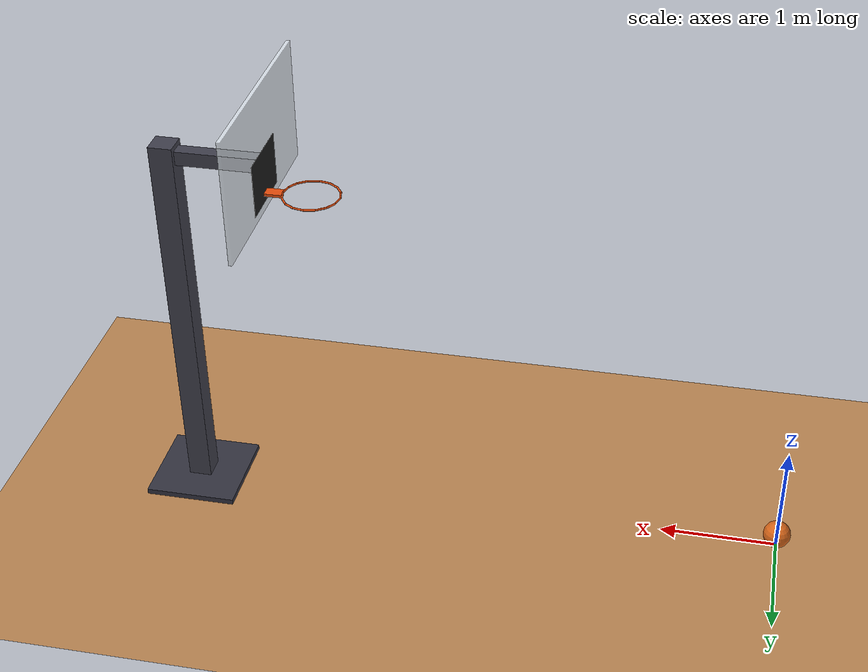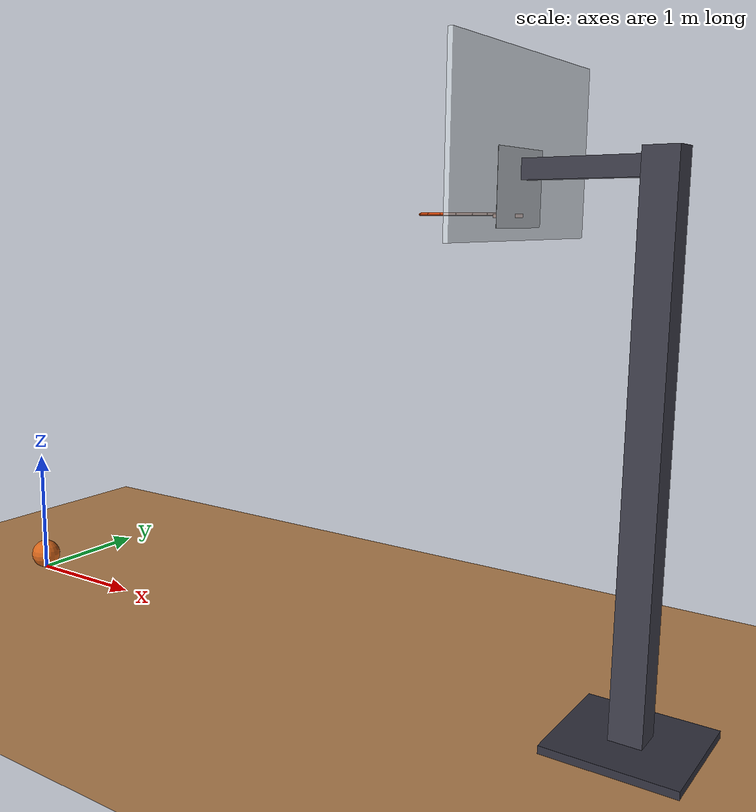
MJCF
<mujoco model="basketball_hoop">
  <option timestep="0.002" density="1.2"/>

  <visual>
    <headlight ambient="0.15 0.15 0.15" diffuse="0.3 0.3 0.3" specular="0 0 0"/>
  </visual>

  <worldbody>
    <!-- Lighting: main overhead directional light plus a softer fill spot above the hoop -->
    <light name="overhead_sun" directional="true" pos="2 0 10" dir="0 0 -1" diffuse="0.8 0.8 0.8" specular="0.2 0.2 0.2" castshadow="true"/>
    <light name="overhead_fill" pos="4 0 8" dir="0 0 -1" diffuse="0.3 0.3 0.3" specular="0 0 0" castshadow="false"/>

    <!-- Floor: top surface at z = 0 -->
    <geom name="floor" type="plane" pos="0 0 0" size="10 10 0.1" rgba="0.72 0.52 0.32 1" friction="0.8 0.005 0.0001"/>

    <!-- Regulation size-7 basketball: circumference 0.75 m -> radius 0.1194 m, mass ~0.62 kg (hollow shell inertia 2/3 m r^2) -->
    <body name="ball" pos="0 0 0.1194">
      <freejoint name="ball_free"/>
      <inertial pos="0 0 0" mass="0.62" diaginertia="0.005893 0.005893 0.005893"/>
      <geom name="ball" type="sphere" size="0.1194" rgba="0.85 0.40 0.10 1" friction="0.9 0.01 0.001" solref="0.01 0.2" fluidshape="ellipsoid" fluidcoef="0.25 0.25 1.5 1.0 1.0"/>
    </body>

    <!-- Hoop: origin at rim center, 4 m along +x, rim at 3.05 m. Fixed to the world (no joint). -->
    <body name="hoop" pos="4 0 3.05">
      <!-- Rim: 16 capsule segments, inner diameter 0.4572 m (18 in), tube radius 0.008 m, tube-center radius 0.2366 m -->
      <geom name="rim_00" type="capsule" size="0.008" fromto="0.2366 0 0 0.2186 0.0905 0" rgba="0.9 0.3 0.05 1"/>
      <geom name="rim_01" type="capsule" size="0.008" fromto="0.2186 0.0905 0 0.1673 0.1673 0" rgba="0.9 0.3 0.05 1"/>
      <geom name="rim_02" type="capsule" size="0.008" fromto="0.1673 0.1673 0 0.0905 0.2186 0" rgba="0.9 0.3 0.05 1"/>
      <geom name="rim_03" type="capsule" size="0.008" fromto="0.0905 0.2186 0 0 0.2366 0" rgba="0.9 0.3 0.05 1"/>
      <geom name="rim_04" type="capsule" size="0.008" fromto="0 0.2366 0 -0.0905 0.2186 0" rgba="0.9 0.3 0.05 1"/>
      <geom name="rim_05" type="capsule" size="0.008" fromto="-0.0905 0.2186 0 -0.1673 0.1673 0" rgba="0.9 0.3 0.05 1"/>
      <geom name="rim_06" type="capsule" size="0.008" fromto="-0.1673 0.1673 0 -0.2186 0.0905 0" rgba="0.9 0.3 0.05 1"/>
      <geom name="rim_07" type="capsule" size="0.008" fromto="-0.2186 0.0905 0 -0.2366 0 0" rgba="0.9 0.3 0.05 1"/>
      <geom name="rim_08" type="capsule" size="0.008" fromto="-0.2366 0 0 -0.2186 -0.0905 0" rgba="0.9 0.3 0.05 1"/>
      <geom name="rim_09" type="capsule" size="0.008" fromto="-0.2186 -0.0905 0 -0.1673 -0.1673 0" rgba="0.9 0.3 0.05 1"/>
      <geom name="rim_10" type="capsule" size="0.008" fromto="-0.1673 -0.1673 0 -0.0905 -0.2186 0" rgba="0.9 0.3 0.05 1"/>
      <geom name="rim_11" type="capsule" size="0.008" fromto="-0.0905 -0.2186 0 0 -0.2366 0" rgba="0.9 0.3 0.05 1"/>
      <geom name="rim_12" type="capsule" size="0.008" fromto="0 -0.2366 0 0.0905 -0.2186 0" rgba="0.9 0.3 0.05 1"/>
      <geom name="rim_13" type="capsule" size="0.008" fromto="0.0905 -0.2186 0 0.1673 -0.1673 0" rgba="0.9 0.3 0.05 1"/>
      <geom name="rim_14" type="capsule" size="0.008" fromto="0.1673 -0.1673 0 0.2186 -0.0905 0" rgba="0.9 0.3 0.05 1"/>
      <geom name="rim_15" type="capsule" size="0.008" fromto="0.2186 -0.0905 0 0.2366 0 0" rgba="0.9 0.3 0.05 1"/>

      <!-- Bracket joining the back of the rim to the backboard face -->
      <geom name="hoop_bracket" type="box" pos="0.3105 0 -0.01" size="0.0705 0.05 0.012" rgba="0.9 0.3 0.05 1"/>

      <!-- Backboard: 1.80 x 1.05 m, 0.03 m thick; front face 0.15 m behind the rim's inner edge (x = 0.381); bottom edge 0.15 m below rim -->
      <geom name="backboard" type="box" pos="0.396 0 0.375" size="0.015 0.9 0.525" rgba="0.92 0.95 0.98 0.85"/>
      <!-- Target square painted on the backboard front (thin, visual only) -->
      <geom name="backboard_square" type="box" pos="0.3805 0 0.145" size="0.0005 0.295 0.225" rgba="0.1 0.1 0.1 1" contype="0" conaffinity="0"/>
    </body>

    <!-- Support: floor plate, vertical pole behind the backboard, and horizontal arm to the backboard's back face (x = 4.411) -->
    <body name="hoop_support" pos="5.2 0 0">
      <geom name="support_base" type="box" pos="0 0 0.025" size="0.4 0.4 0.025" rgba="0.2 0.2 0.25 1"/>
      <geom name="support_pole" type="box" pos="0 0 1.7" size="0.1 0.1 1.7" rgba="0.25 0.25 0.3 1"/>
      <geom name="support_arm" type="box" pos="-0.4445 0 3.3" size="0.3445 0.06 0.06" rgba="0.25 0.25 0.3 1"/>
    </body>
  </worldbody>

  <keyframe>
    <key name="shot" qvel="3.21 0 9.3 0 0 0"/>
    <!-- Redirected the original 3.21 m/s horizontal speed along +x, setting vy to zero to remove the leftward miss while preserving the vertical launch and flight arc. -->
  </keyframe>
</mujoco>
